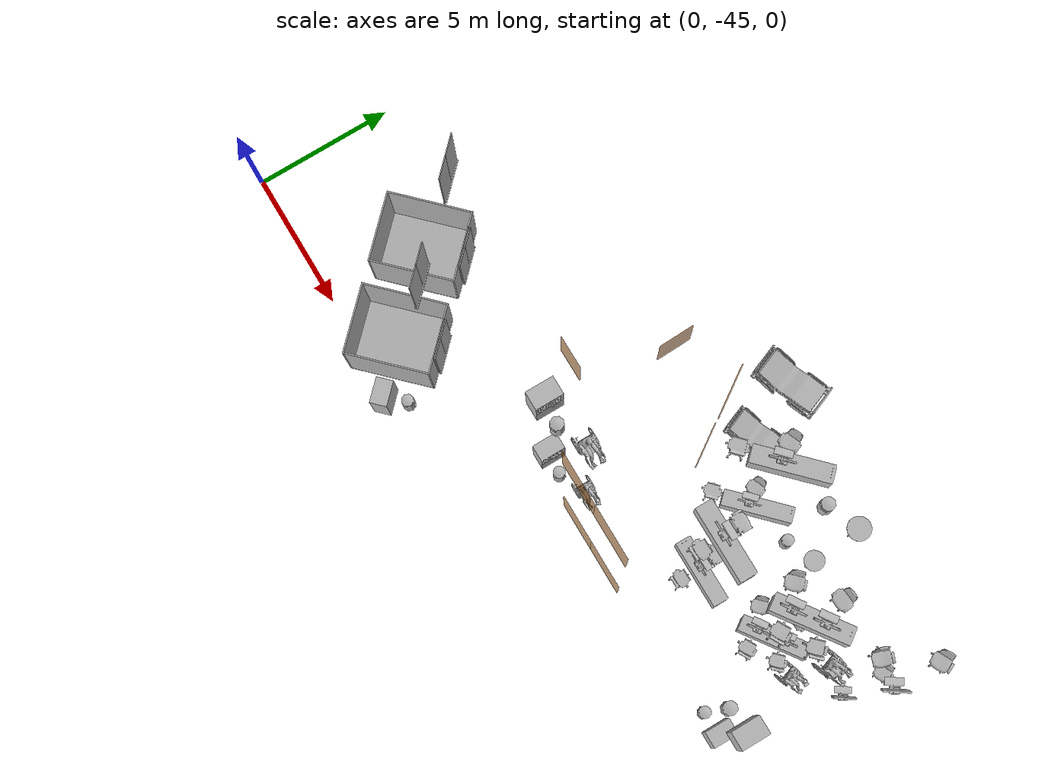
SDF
<sdf version="1.7">
 <world name="sim_world">
  <include>
   <name>OpenRobotics/CoffeeTable</name>
   <uri>model://CoffeeTable</uri>
   <pose>21.28316603207571 -35.513484096765545 0.0 0 0 1.5708</pose>
   <static>True</static>
  </include>
  <include>
   <name>OpenRobotics/CGMVanguard_17</name>
   <uri>model://CGMVanguard</uri>
   <pose>16.623283719856943 -34.967612784123716 0.0 0 0 0.3826</pose>
   <static>True</static>
  </include>
  <include>
   <name>OpenRobotics/NurseTable_3</name>
   <uri>model://NurseTable</uri>
   <pose>22.785792854121013 -38.1124841352256 0.0 0 0 -2.5278</pose>
   <static>True</static>
  </include>
  <include>
   <name>OpenRobotics/NurseTable_37</name>
   <uri>model://NurseTable</uri>
   <pose>18.77753163339873 -36.26738202376835 0.0 0 0 -2.37</pose>
   <static>True</static>
  </include>
  <include>
   <name>OpenRobotics/NurseTable_38</name>
   <uri>model://NurseTable</uri>
   <pose>19.64964424445215 -39.04807892004157 0.0 0 0 -3.1416</pose>
   <static>True</static>
  </include>
  <include>
   <name>OpenRobotics/DeskChair</name>
   <uri>model://DeskChair</uri>
   <pose>19.392188761970708 -38.37179723856778 0.0 0 0 1.5708</pose>
   <static>True</static>
  </include>
  <include>
   <name>OpenRobotics/DeskChair_2</name>
   <uri>model://DeskChair</uri>
   <pose>21.619503096034787 -37.88580054613288 0.0 0 0 -0.7706</pose>
   <static>True</static>
  </include>
  <include>
   <name>OpenRobotics/DeskChair_3</name>
   <uri>model://DeskChair</uri>
   <pose>22.753001807622805 -36.9909388100458 0.0 0 0 -1.489</pose>
   <static>True</static>
  </include>
  <include>
   <name>OpenRobotics/DeskChair_4</name>
   <uri>model://DeskChair</uri>
   <pose>24.676985500557695 -36.931279566170566 0.0 0 0 -0.3695</pose>
   <static>True</static>
  </include>
  <include>
   <name>OpenRobotics/DeskChair_5</name>
   <uri>model://DeskChair</uri>
   <pose>25.638963886004408 -35.5442290681128 0.0 0 0 -1.0979</pose>
   <static>True</static>
  </include>
  <include>
   <name>OpenRobotics/DeskChair_17</name>
   <uri>model://DeskChair</uri>
   <pose>18.158324679820023 -35.89117341640709 0.0 0 0 -1.1703</pose>
   <static>True</static>
  </include>
  <include>
   <name>OpenRobotics/OfficeChairGrey</name>
   <uri>model://OfficeChairGrey</uri>
   <pose>19.48318526210532 -39.605742086842845 0.0 0 0 -3.1182</pose>
   <static>True</static>
  </include>
  <include>
   <name>OpenRobotics/OfficeChairGrey_2</name>
   <uri>model://OfficeChairGrey</uri>
   <pose>22.566189761932254 -38.93406407445871 0.0 0 0 -2.6428</pose>
   <static>True</static>
  </include>
  <include>
   <name>OpenRobotics/OfficeChairGrey_3</name>
   <uri>model://OfficeChairGrey</uri>
   <pose>23.432433367947407 -38.318895427098994 0.0 0 0 -2.3511</pose>
   <static>True</static>
  </include>
  <include>
   <name>OpenRobotics/OfficeChairGrey_45</name>
   <uri>model://OfficeChairGrey</uri>
   <pose>17.42068766585902 -37.16361678396988 0.0 0 0 -2.375</pose>
   <static>True</static>
  </include>
  <include>
   <name>OpenRobotics/MonitorAndKeyboard_7</name>
   <uri>model://MonitorAndKeyboard</uri>
   <pose>25.62889504249839 -37.210676512441864 0.86 0 0 -0.5974</pose>
   <static>True</static>
  </include>
  <include>
   <name>OpenRobotics/MonitorAndKeyboard_9</name>
   <uri>model://MonitorAndKeyboard</uri>
   <pose>22.280896888581225 -38.45732856428602 0.86 0 0 -0.9838</pose>
   <static>True</static>
  </include>
  <include>
   <name>OpenRobotics/MonitorAndKeyboard_10</name>
   <uri>model://MonitorAndKeyboard</uri>
   <pose>23.102315295565575 -37.87460097688554 0.86 0 0 -0.9674</pose>
   <static>True</static>
  </include>
  <include>
   <name>OpenRobotics/MonitorAndKeyboard_11</name>
   <uri>model://MonitorAndKeyboard</uri>
   <pose>19.465524402907597 -39.02602976808588 0.86 0 0 -1.5708</pose>
   <static>True</static>
  </include>
  <include>
   <name>OpenRobotics/MonitorAndKeyboard_32</name>
   <uri>model://MonitorAndKeyboard</uri>
   <pose>18.53876004769049 -36.463401407638194 0.86 0 0 -0.8187</pose>
   <static>True</static>
  </include>
  <include>
   <name>OpenRobotics/VendingMachine_2</name>
   <uri>model://VendingMachine</uri>
   <pose>13.523210645744406 -41.31690704203688 0.0 0 0 1.5708</pose>
   <static>True</static>
  </include>
  <include>
   <name>OpenRobotics/VendingMachine_3</name>
   <uri>model://VendingMachine</uri>
   <pose>24.505680550748068 -41.31690704203688 0.0 0 0 1.5708</pose>
   <static>True</static>
  </include>
  <include>
   <name>OpenRobotics/LitterBin</name>
   <uri>model://LitterBin</uri>
   <pose>14.326725895157889 -41.3937156263221 0.0 0 0 1.5708</pose>
   <static>True</static>
  </include>
  <include>
   <name>OpenRobotics/LitterBin_2</name>
   <uri>model://LitterBin</uri>
   <pose>23.67632014153304 -41.3765124418292 0.0 0 0 1.5708</pose>
   <static>True</static>
  </include>
  <include>
   <name>OpenRobotics/LitterBin_9</name>
   <uri>model://LitterBin</uri>
   <pose>20.249844236760143 -35.99409638090845 0.0 0 0 1.5708</pose>
   <static>True</static>
  </include>
  <include>
   <name>OpenRobotics/PatientWheelChair</name>
   <uri>model://PatientWheelChair</uri>
   <pose>24.24628668128151 -38.23912541825318 0.0 0 0 1.9049</pose>
   <static>True</static>
  </include>
  <include>
   <name>OpenRobotics/PatientWheelChair_3</name>
   <uri>model://PatientWheelChair</uri>
   <pose>15.355524787508186 -40.911191877235524 0.0 0 0 1.5708</pose>
   <static>True</static>
  </include>
  <include>
   <name>OpenRobotics/VendingMachine_6</name>
   <uri>model://VendingMachine</uri>
   <pose>9.019233875620175 -45.16312449521176 0.0 0 0 -0.7854</pose>
   <static>True</static>
  </include>
  <include>
   <name>OpenRobotics/LitterBin_10</name>
   <uri>model://LitterBin</uri>
   <pose>9.557890081150735 -44.544321372254956 0.0 0 0 1.5708</pose>
   <static>True</static>
  </include>
  <model name="L1_clinic_a">
   <pose>17.010597669320425 -41.768955040190804 0.0 0 0 3.141592653589793</pose>
   <link name="left">
    <pose>-0.8791594554055622 0 1.11 0 0 0</pose>
    <visual name="left_visual">
     <geometry><box><size>1.7483189108111243 0.03 2.2</size></box></geometry>
     <material>
      <ambient>0.5 0.25 0 0.6</ambient>
      <diffuse>0.5 0.25 0 0.6</diffuse>
      <pbr><metal><metalness>0.0</metalness></metal></pbr>
     </material>
    </visual>
    <collision name="left_collision">
     <geometry><box><size>1.7483189108111243 0.03 2.2</size></box></geometry>
     <surface><contact><collide_bitmask>0x02</collide_bitmask></contact></surface>
    </collision>
    <inertial>
     <mass>50.0</mass>
     <inertia><ixx>20.17041666666667</ixx><iyy>32.90257922458249</iyy><izz>12.739662557915818</izz></inertia>
    </inertial>
   </link>
   <joint name="left_joint" type="prismatic">
    <parent>world</parent>
    <child>left</child>
    <axis>
     <xyz>1 0 0</xyz>
     <limit><lower>-1.7583189108111243</lower><upper>0.0</upper><effort>500.0</effort></limit>
    </axis>
   </joint>
   <link name="right">
    <pose>0.8791594554055622 0 1.11 0 0 0</pose>
    <visual name="right_visual">
     <geometry><box><size>1.7483189108111243 0.03 2.2</size></box></geometry>
     <material>
      <ambient>0.5 0.25 0 0.6</ambient>
      <diffuse>0.5 0.25 0 0.6</diffuse>
      <pbr><metal><metalness>0.0</metalness></metal></pbr>
     </material>
    </visual>
    <collision name="right_collision">
     <geometry><box><size>1.7483189108111243 0.03 2.2</size></box></geometry>
     <surface><contact><collide_bitmask>0x02</collide_bitmask></contact></surface>
    </collision>
    <inertial>
     <mass>50.0</mass>
     <inertia><ixx>20.17041666666667</ixx><iyy>32.90257922458249</iyy><izz>12.739662557915818</izz></inertia>
    </inertial>
   </link>
   <joint name="right_joint" type="prismatic">
    <parent>world</parent>
    <child>right</child>
    <axis>
     <xyz>1 0 0</xyz>
     <limit><lower>0.0</lower><upper>1.7583189108111243</upper><effort>500.0</effort></limit>
    </axis>
   </joint>
   <plugin name="door" filename="libdoor.so">
    <v_max_door>0.2</v_max_door>
    <a_max_door>0.2</a_max_door>
    <a_nom_door>0.08</a_nom_door>
    <dx_min_door>0.001</dx_min_door>
    <f_max_door>100.0</f_max_door>
    <door name="L1_clinic_a" type="DoubleSlidingDoor" left_joint_name="left_joint" right_joint_name="right_joint"/>
   </plugin>
  </model>
  <model name="L1_left_consult_rm_7_outer">
   <pose>16.104374831737253 -36.70911888004311 0.0 0 0 -0.9670545342019088</pose>
   <static>true</static>
   <link name="right">
    <pose>0 0 1.11 0 0 0</pose>
    <visual name="right_visual">
     <geometry><box><size>1.3074913466446625 0.03 2.2</size></box></geometry>
     <material>
      <ambient>0.5 0.25 0 0.6</ambient>
      <diffuse>0.5 0.25 0 0.6</diffuse>
      <pbr><metal><metalness>0.0</metalness></metal></pbr>
     </material>
    </visual>
    <collision name="right_collision">
     <geometry><box><size>1.3074913466446625 0.03 2.2</size></box></geometry>
     <surface><contact><collide_bitmask>0x02</collide_bitmask></contact></surface>
    </collision>
    <inertial>
     <mass>50.0</mass>
     <inertia><ixx>20.17041666666667</ixx><iyy>27.289723423127807</iyy><izz>7.1268067564611375</izz></inertia>
    </inertial>
   </link>
   <joint name="right_joint" type="prismatic">
    <parent>world</parent>
    <child>right</child>
    <axis>
     <xyz>1 0 0</xyz>
     <limit><lower>0.0</lower><upper>1.3174913466446625</upper><effort>500.0</effort></limit>
    </axis>
   </joint>
  </model>
  <model name="L1_wc_1">
   <pose>11.200928810430376 -39.07548555824779 0.0 0 0 0.003911519091325118</pose>
   <static>true</static>
   <link name="right">
    <pose>0 0 1.11 0 0 0</pose>
    <visual name="right_visual">
     <geometry><box><size>1.2426652499551487 0.03 2.2</size></box></geometry>
     <material>
      <ambient>0.5 0.25 0 0.6</ambient>
      <diffuse>0.5 0.25 0 0.6</diffuse>
      <pbr><metal><metalness>0.0</metalness></metal></pbr>
     </material>
    </visual>
    <collision name="right_collision">
     <geometry><box><size>1.2426652499551487 0.03 2.2</size></box></geometry>
     <surface><contact><collide_bitmask>0x02</collide_bitmask></contact></surface>
    </collision>
    <inertial>
     <mass>50.0</mass>
     <inertia><ixx>20.17041666666667</ixx><iyy>26.600903847692056</iyy><izz>6.437987181025385</izz></inertia>
    </inertial>
   </link>
   <joint name="right_joint" type="revolute">
    <parent>world</parent>
    <child>right</child>
    <axis><xyz>0 0 1</xyz><limit><lower>0</lower><upper>1.57</upper></limit></axis>
    <pose>0.6263326249775744 0 0 0 0 0</pose>
   </joint>
  </model>
  <model name="L1_hr">
   <pose>12.55797469328104 -35.737919695396364 0.0 0 0 -1.5363800665340395</pose>
   <static>true</static>
   <link name="left">
    <pose>0 0 1.11 0 0 0</pose>
    <visual name="left_visual">
     <geometry><box><size>1.3419909622330712 0.03 2.2</size></box></geometry>
     <material>
      <ambient>0.5 0.25 0 0.6</ambient>
      <diffuse>0.5 0.25 0 0.6</diffuse>
      <pbr><metal><metalness>0.0</metalness></metal></pbr>
     </material>
    </visual>
    <collision name="left_collision">
     <geometry><box><size>1.3419909622330712 0.03 2.2</size></box></geometry>
     <surface><contact><collide_bitmask>0x02</collide_bitmask></contact></surface>
    </collision>
    <inertial>
     <mass>50.0</mass>
     <inertia><ixx>20.17041666666667</ixx><iyy>27.670582261313523</iyy><izz>7.507665594646852</izz></inertia>
    </inertial>
   </link>
   <joint name="left_joint" type="revolute">
    <parent>world</parent>
    <child>left</child>
    <axis><xyz>0 0 1</xyz><limit><lower>-1.57</lower><upper>0</upper></limit></axis>
    <pose>0.6759954811165356 0 0 0 0 0</pose>
   </joint>
  </model>
  <include>
   <name>OpenRobotics/CoffeeTable_4</name>
   <uri>model://CoffeeTable</uri>
   <pose>21.28316603207571 -35.513484096765545 10.0 0 0 1.5708</pose>
   <static>True</static>
  </include>
  <include>
   <name>OpenRobotics/CGMVanguard_35</name>
   <uri>model://CGMVanguard</uri>
   <pose>16.623283719856943 -34.967612784123716 10.0 0 0 0.3826</pose>
   <static>True</static>
  </include>
  <include>
   <name>OpenRobotics/NurseTable_46</name>
   <uri>model://NurseTable</uri>
   <pose>22.785792854121013 -38.1124841352256 10.0 0 0 -2.5278</pose>
   <static>True</static>
  </include>
  <include>
   <name>OpenRobotics/NurseTable_74</name>
   <uri>model://NurseTable</uri>
   <pose>18.77753163339873 -36.26738202376835 10.0 0 0 -2.37</pose>
   <static>True</static>
  </include>
  <include>
   <name>OpenRobotics/NurseTable_75</name>
   <uri>model://NurseTable</uri>
   <pose>19.64964424445215 -39.04807892004157 10.0 0 0 -3.1416</pose>
   <static>True</static>
  </include>
  <include>
   <name>OpenRobotics/DeskChair_50</name>
   <uri>model://DeskChair</uri>
   <pose>19.392188761970708 -38.37179723856778 10.0 0 0 1.5708</pose>
   <static>True</static>
  </include>
  <include>
   <name>OpenRobotics/DeskChair_51</name>
   <uri>model://DeskChair</uri>
   <pose>21.619503096034787 -37.88580054613288 10.0 0 0 -0.7706</pose>
   <static>True</static>
  </include>
  <include>
   <name>OpenRobotics/DeskChair_52</name>
   <uri>model://DeskChair</uri>
   <pose>22.753001807622805 -36.9909388100458 10.0 0 0 -1.489</pose>
   <static>True</static>
  </include>
  <include>
   <name>OpenRobotics/DeskChair_53</name>
   <uri>model://DeskChair</uri>
   <pose>24.676985500557695 -36.931279566170566 10.0 0 0 -0.3695</pose>
   <static>True</static>
  </include>
  <include>
   <name>OpenRobotics/DeskChair_54</name>
   <uri>model://DeskChair</uri>
   <pose>25.638963886004408 -35.5442290681128 10.0 0 0 -1.0979</pose>
   <static>True</static>
  </include>
  <include>
   <name>OpenRobotics/DeskChair_57</name>
   <uri>model://DeskChair</uri>
   <pose>18.158324679820023 -35.89117341640709 10.0 0 0 -1.1703</pose>
   <static>True</static>
  </include>
  <include>
   <name>OpenRobotics/OfficeChairGrey_49</name>
   <uri>model://OfficeChairGrey</uri>
   <pose>19.48318526210532 -39.605742086842845 10.0 0 0 -3.1182</pose>
   <static>True</static>
  </include>
  <include>
   <name>OpenRobotics/OfficeChairGrey_50</name>
   <uri>model://OfficeChairGrey</uri>
   <pose>22.566189761932254 -38.93406407445871 10.0 0 0 -2.6428</pose>
   <static>True</static>
  </include>
  <include>
   <name>OpenRobotics/OfficeChairGrey_51</name>
   <uri>model://OfficeChairGrey</uri>
   <pose>23.432433367947407 -38.318895427098994 10.0 0 0 -2.3511</pose>
   <static>True</static>
  </include>
  <include>
   <name>OpenRobotics/OfficeChairGrey_81</name>
   <uri>model://OfficeChairGrey</uri>
   <pose>17.42068766585902 -37.16361678396988 10.0 0 0 -2.375</pose>
   <static>True</static>
  </include>
  <include>
   <name>OpenRobotics/MonitorAndKeyboard_58</name>
   <uri>model://MonitorAndKeyboard</uri>
   <pose>25.62889504249839 -37.210676512441864 10.86 0 0 -0.5974</pose>
   <static>True</static>
  </include>
  <include>
   <name>OpenRobotics/MonitorAndKeyboard_60</name>
   <uri>model://MonitorAndKeyboard</uri>
   <pose>22.280896888581225 -38.45732856428602 10.86 0 0 -0.9838</pose>
   <static>True</static>
  </include>
  <include>
   <name>OpenRobotics/MonitorAndKeyboard_61</name>
   <uri>model://MonitorAndKeyboard</uri>
   <pose>23.102315295565575 -37.87460097688554 10.86 0 0 -0.9674</pose>
   <static>True</static>
  </include>
  <include>
   <name>OpenRobotics/MonitorAndKeyboard_62</name>
   <uri>model://MonitorAndKeyboard</uri>
   <pose>19.465524402907597 -39.02602976808588 10.86 0 0 -1.5708</pose>
   <static>True</static>
  </include>
  <include>
   <name>OpenRobotics/MonitorAndKeyboard_75</name>
   <uri>model://MonitorAndKeyboard</uri>
   <pose>18.53876004769049 -36.463401407638194 10.86 0 0 -0.8187</pose>
   <static>True</static>
  </include>
  <include>
   <name>OpenRobotics/VendingMachine_8</name>
   <uri>model://VendingMachine</uri>
   <pose>13.523210645744406 -41.31690704203688 10.0 0 0 1.5708</pose>
   <static>True</static>
  </include>
  <include>
   <name>OpenRobotics/VendingMachine_9</name>
   <uri>model://VendingMachine</uri>
   <pose>24.505680550748068 -41.31690704203688 10.0 0 0 1.5708</pose>
   <static>True</static>
  </include>
  <include>
   <name>OpenRobotics/LitterBin_11</name>
   <uri>model://LitterBin</uri>
   <pose>14.326725895157889 -41.3937156263221 10.0 0 0 1.5708</pose>
   <static>True</static>
  </include>
  <include>
   <name>OpenRobotics/LitterBin_12</name>
   <uri>model://LitterBin</uri>
   <pose>23.67632014153304 -41.3765124418292 10.0 0 0 1.5708</pose>
   <static>True</static>
  </include>
  <include>
   <name>OpenRobotics/LitterBin_17</name>
   <uri>model://LitterBin</uri>
   <pose>20.249844236760143 -35.99409638090845 10.0 0 0 1.5708</pose>
   <static>True</static>
  </include>
  <include>
   <name>OpenRobotics/PatientWheelChair_9</name>
   <uri>model://PatientWheelChair</uri>
   <pose>24.24628668128151 -38.23912541825318 10.0 0 0 1.9049</pose>
   <static>True</static>
  </include>
  <include>
   <name>OpenRobotics/PatientWheelChair_10</name>
   <uri>model://PatientWheelChair</uri>
   <pose>15.355524787508186 -40.911191877235524 10.0 0 0 1.5708</pose>
   <static>True</static>
  </include>
  <model name="L2_clinic_a">
   <pose>17.010597669320425 -41.768955040190804 10.0 0 0 3.141592653589793</pose>
   <link name="left">
    <pose>-0.8791594554055622 0 1.11 0 0 0</pose>
    <visual name="left_visual">
     <geometry><box><size>1.7483189108111243 0.03 2.2</size></box></geometry>
     <material>
      <ambient>0.5 0.25 0 0.6</ambient>
      <diffuse>0.5 0.25 0 0.6</diffuse>
      <pbr><metal><metalness>0.0</metalness></metal></pbr>
     </material>
    </visual>
    <collision name="left_collision">
     <geometry><box><size>1.7483189108111243 0.03 2.2</size></box></geometry>
     <surface><contact><collide_bitmask>0x02</collide_bitmask></contact></surface>
    </collision>
    <inertial>
     <mass>50.0</mass>
     <inertia><ixx>20.17041666666667</ixx><iyy>32.90257922458249</iyy><izz>12.739662557915818</izz></inertia>
    </inertial>
   </link>
   <joint name="left_joint" type="prismatic">
    <parent>world</parent>
    <child>left</child>
    <axis>
     <xyz>1 0 0</xyz>
     <limit><lower>-1.7583189108111243</lower><upper>0.0</upper><effort>500.0</effort></limit>
    </axis>
   </joint>
   <link name="right">
    <pose>0.8791594554055622 0 1.11 0 0 0</pose>
    <visual name="right_visual">
     <geometry><box><size>1.7483189108111243 0.03 2.2</size></box></geometry>
     <material>
      <ambient>0.5 0.25 0 0.6</ambient>
      <diffuse>0.5 0.25 0 0.6</diffuse>
      <pbr><metal><metalness>0.0</metalness></metal></pbr>
     </material>
    </visual>
    <collision name="right_collision">
     <geometry><box><size>1.7483189108111243 0.03 2.2</size></box></geometry>
     <surface><contact><collide_bitmask>0x02</collide_bitmask></contact></surface>
    </collision>
    <inertial>
     <mass>50.0</mass>
     <inertia><ixx>20.17041666666667</ixx><iyy>32.90257922458249</iyy><izz>12.739662557915818</izz></inertia>
    </inertial>
   </link>
   <joint name="right_joint" type="prismatic">
    <parent>world</parent>
    <child>right</child>
    <axis>
     <xyz>1 0 0</xyz>
     <limit><lower>0.0</lower><upper>1.7583189108111243</upper><effort>500.0</effort></limit>
    </axis>
   </joint>
   <plugin name="door" filename="libdoor.so">
    <v_max_door>0.2</v_max_door>
    <a_max_door>0.2</a_max_door>
    <a_nom_door>0.08</a_nom_door>
    <dx_min_door>0.001</dx_min_door>
    <f_max_door>100.0</f_max_door>
    <door name="L2_clinic_a" type="DoubleSlidingDoor" left_joint_name="left_joint" right_joint_name="right_joint"/>
   </plugin>
  </model>
  <model name="L2_left_consult_rm_7_outer">
   <pose>16.104374831737253 -36.70911888004311 10.0 0 0 -0.9670545342019088</pose>
   <static>true</static>
   <link name="right">
    <pose>0 0 1.11 0 0 0</pose>
    <visual name="right_visual">
     <geometry><box><size>1.3074913466446625 0.03 2.2</size></box></geometry>
     <material>
      <ambient>0.5 0.25 0 0.6</ambient>
      <diffuse>0.5 0.25 0 0.6</diffuse>
      <pbr><metal><metalness>0.0</metalness></metal></pbr>
     </material>
    </visual>
    <collision name="right_collision">
     <geometry><box><size>1.3074913466446625 0.03 2.2</size></box></geometry>
     <surface><contact><collide_bitmask>0x02</collide_bitmask></contact></surface>
    </collision>
    <inertial>
     <mass>50.0</mass>
     <inertia><ixx>20.17041666666667</ixx><iyy>27.289723423127807</iyy><izz>7.1268067564611375</izz></inertia>
    </inertial>
   </link>
   <joint name="right_joint" type="prismatic">
    <parent>world</parent>
    <child>right</child>
    <axis>
     <xyz>1 0 0</xyz>
     <limit><lower>0.0</lower><upper>1.3174913466446625</upper><effort>500.0</effort></limit>
    </axis>
   </joint>
  </model>
  <model name="ShaftDoor_lift_24_L1_lift_24_door">
   <pose>6.318455073942428 -40.28272590672457 0.0 0 0 -0.785</pose>
   <link name="right_door">
    <pose>0.35 0 1.25 0 0 0</pose>
    <visual name="right_door_visual">
     <geometry><box><size>0.7 0.03 2.5</size></box></geometry>
     <material>
      <ambient>0.5 0.5 0.5 1</ambient>
      <diffuse>0.7 0.7 0.7 1</diffuse>
      <specular>0.6 0.6 0.6 1</specular>
      <emissive>0.1 0.1 0.1 1</emissive>
     </material>
    </visual>
    <collision name="right_door_collision">
     <geometry><box><size>0.7 0.03 2.5</size></box></geometry>
     <surface><contact><collide_bitmask>0x02</collide_bitmask></contact></surface>
    </collision>
   </link>
   <joint name="right_joint" type="prismatic">
    <parent>world</parent>
    <child>right_door</child>
    <axis><xyz>1 0 0</xyz><limit><lower>0</lower><upper>0.7</upper></limit></axis>
   </joint>
   <link name="left_door">
    <pose>-0.35 0 1.25 0 0 0</pose>
    <visual name="left_door_visual">
     <geometry><box><size>0.7 0.03 2.5</size></box></geometry>
     <material>
      <ambient>0.5 0.5 0.5 1</ambient>
      <diffuse>0.7 0.7 0.7 1</diffuse>
      <specular>0.6 0.6 0.6 1</specular>
      <emissive>0.1 0.1 0.1 1</emissive>
     </material>
    </visual>
    <collision name="left_door_collision">
     <geometry><box><size>0.7 0.03 2.5</size></box></geometry>
     <surface><contact><collide_bitmask>0x02</collide_bitmask></contact></surface>
    </collision>
   </link>
   <joint name="left_joint" type="prismatic">
    <parent>world</parent>
    <child>left_door</child>
    <axis><xyz>1 0 0</xyz><limit><lower>-0.7</lower><upper>0</upper></limit></axis>
   </joint>
   <link name="ramp">
    <pose>0 0 -0.025 0 0 0</pose>
    <visual name="ramp_visual">
     <geometry><box><size>1.4 0.1 0.05</size></box></geometry>
     <material>
      <ambient>0.5 0.5 0.5 1</ambient>
      <diffuse>0.7 0.7 0.7 1</diffuse>
      <specular>0.6 0.6 0.6 1</specular>
      <emissive>0.1 0.1 0.1 1</emissive>
     </material>
    </visual>
    <collision name="ramp_collision">
     <geometry><box><size>1.4 0.1 0.05</size></box></geometry>
     <surface><contact><collide_bitmask>0x02</collide_bitmask></contact></surface>
    </collision>
   </link>
   <joint name="ramp_joint" type="fixed"><parent>world</parent><child>ramp</child></joint>
  </model>
  <model name="ShaftDoor_lift_24_L2_lift_24_door">
   <pose>6.318455073942428 -40.28272590672457 10.0 0 0 -0.785</pose>
   <link name="right_door">
    <pose>0.35 0 1.25 0 0 0</pose>
    <visual name="right_door_visual">
     <geometry><box><size>0.7 0.03 2.5</size></box></geometry>
     <material>
      <ambient>0.5 0.5 0.5 1</ambient>
      <diffuse>0.7 0.7 0.7 1</diffuse>
      <specular>0.6 0.6 0.6 1</specular>
      <emissive>0.1 0.1 0.1 1</emissive>
     </material>
    </visual>
    <collision name="right_door_collision">
     <geometry><box><size>0.7 0.03 2.5</size></box></geometry>
     <surface><contact><collide_bitmask>0x02</collide_bitmask></contact></surface>
    </collision>
   </link>
   <joint name="right_joint" type="prismatic">
    <parent>world</parent>
    <child>right_door</child>
    <axis><xyz>1 0 0</xyz><limit><lower>0</lower><upper>0.7</upper></limit></axis>
   </joint>
   <link name="left_door">
    <pose>-0.35 0 1.25 0 0 0</pose>
    <visual name="left_door_visual">
     <geometry><box><size>0.7 0.03 2.5</size></box></geometry>
     <material>
      <ambient>0.5 0.5 0.5 1</ambient>
      <diffuse>0.7 0.7 0.7 1</diffuse>
      <specular>0.6 0.6 0.6 1</specular>
      <emissive>0.1 0.1 0.1 1</emissive>
     </material>
    </visual>
    <collision name="left_door_collision">
     <geometry><box><size>0.7 0.03 2.5</size></box></geometry>
     <surface><contact><collide_bitmask>0x02</collide_bitmask></contact></surface>
    </collision>
   </link>
   <joint name="left_joint" type="prismatic">
    <parent>world</parent>
    <child>left_door</child>
    <axis><xyz>1 0 0</xyz><limit><lower>-0.7</lower><upper>0</upper></limit></axis>
   </joint>
   <link name="ramp">
    <pose>0 0 -0.025 0 0 0</pose>
    <visual name="ramp_visual">
     <geometry><box><size>1.4 0.1 0.05</size></box></geometry>
     <material>
      <ambient>0.5 0.5 0.5 1</ambient>
      <diffuse>0.7 0.7 0.7 1</diffuse>
      <specular>0.6 0.6 0.6 1</specular>
      <emissive>0.1 0.1 0.1 1</emissive>
     </material>
    </visual>
    <collision name="ramp_collision">
     <geometry><box><size>1.4 0.1 0.05</size></box></geometry>
     <surface><contact><collide_bitmask>0x02</collide_bitmask></contact></surface>
    </collision>
   </link>
   <joint name="ramp_joint" type="fixed"><parent>world</parent><child>ramp</child></joint>
  </model>
  <model name="lift_24">
   <link name="platform">
    <inertial><mass>1200</mass><inertia><ixx>625.25</ixx><iyy>900.25</iyy><izz>1525.0</izz></inertia></inertial>
    <visual name="floor">
     <pose>0 0 -0.025 0 0 0</pose>
     <geometry><box><size>2.5 3.0 0.05</size></box></geometry>
     <material>
      <ambient>0.5 0.5 0.5 1</ambient>
      <diffuse>0.7 0.7 0.7 1</diffuse>
      <specular>0.6 0.6 0.6 1</specular>
      <emissive>0.1 0.1 0.1 1</emissive>
     </material>
    </visual>
    <collision name="floor">
     <pose>0 0 -0.025 0 0 0</pose>
     <geometry><box><size>2.5 3.0 0.05</size></box></geometry>
     <surface><contact><collide_bitmask>0x01</collide_bitmask></contact></surface>
    </collision>
    <visual name="frontwall1">
     <pose>-0.975 1.475 1.25 0 0 0</pose>
     <geometry><box><size>0.55 0.05 2.5</size></box></geometry>
     <material>
      <ambient>0.5 0.5 0.5 1</ambient>
      <diffuse>0.7 0.7 0.7 1</diffuse>
      <specular>0.6 0.6 0.6 1</specular>
      <emissive>0.1 0.1 0.1 1</emissive>
     </material>
    </visual>
    <collision name="frontwall1">
     <pose>-0.975 1.475 1.25 0 0 0</pose>
     <geometry><box><size>0.55 0.05 2.5</size></box></geometry>
     <surface><contact><collide_bitmask>0x01</collide_bitmask></contact></surface>
    </collision>
    <visual name="frontwall2">
     <pose>0.975 1.475 1.25 0 0 0</pose>
     <geometry><box><size>0.55 0.05 2.5</size></box></geometry>
     <material>
      <ambient>0.5 0.5 0.5 1</ambient>
      <diffuse>0.7 0.7 0.7 1</diffuse>
      <specular>0.6 0.6 0.6 1</specular>
      <emissive>0.1 0.1 0.1 1</emissive>
     </material>
    </visual>
    <collision name="frontwall2">
     <pose>0.975 1.475 1.25 0 0 0</pose>
     <geometry><box><size>0.55 0.05 2.5</size></box></geometry>
     <surface><contact><collide_bitmask>0x01</collide_bitmask></contact></surface>
    </collision>
    <visual name="backwall1">
     <pose>0.0 -1.475 1.25 0 0 0</pose>
     <geometry><box><size>2.5 0.05 2.5</size></box></geometry>
     <material>
      <ambient>0.5 0.5 0.5 1</ambient>
      <diffuse>0.7 0.7 0.7 1</diffuse>
      <specular>0.6 0.6 0.6 1</specular>
      <emissive>0.1 0.1 0.1 1</emissive>
     </material>
    </visual>
    <collision name="backwall1">
     <pose>0.0 -1.475 1.25 0 0 0</pose>
     <geometry><box><size>2.5 0.05 2.5</size></box></geometry>
     <surface><contact><collide_bitmask>0x01</collide_bitmask></contact></surface>
    </collision>
    <visual name="leftwall1">
     <pose>-1.225 0.0 1.25 0 0 1.5707963267948966</pose>
     <geometry><box><size>2.9 0.05 2.5</size></box></geometry>
     <material>
      <ambient>0.5 0.5 0.5 1</ambient>
      <diffuse>0.7 0.7 0.7 1</diffuse>
      <specular>0.6 0.6 0.6 1</specular>
      <emissive>0.1 0.1 0.1 1</emissive>
     </material>
    </visual>
    <collision name="leftwall1">
     <pose>-1.225 0.0 1.25 0 0 1.5707963267948966</pose>
     <geometry><box><size>2.9 0.05 2.5</size></box></geometry>
     <surface><contact><collide_bitmask>0x01</collide_bitmask></contact></surface>
    </collision>
    <visual name="rightwall1">
     <pose>1.225 0.0 1.25 0 0 1.5707963267948966</pose>
     <geometry><box><size>2.9 0.05 2.5</size></box></geometry>
     <material>
      <ambient>0.5 0.5 0.5 1</ambient>
      <diffuse>0.7 0.7 0.7 1</diffuse>
      <specular>0.6 0.6 0.6 1</specular>
      <emissive>0.1 0.1 0.1 1</emissive>
     </material>
    </visual>
    <collision name="rightwall1">
     <pose>1.225 0.0 1.25 0 0 1.5707963267948966</pose>
     <geometry><box><size>2.9 0.05 2.5</size></box></geometry>
     <surface><contact><collide_bitmask>0x01</collide_bitmask></contact></surface>
    </collision>
   </link>
   <joint name="cabin_joint" type="prismatic">
    <parent>world</parent>
    <child>platform</child>
    <axis><xyz>0 0 1</xyz></axis>
   </joint>
   <link name="CabinDoor_lift_24_lift_24_door_right_door">
    <pose>0.35 1.475 1.25 0 0 0.0</pose>
    <visual name="CabinDoor_lift_24_lift_24_door_right_door_visual">
     <geometry><box><size>0.7 0.03 2.5</size></box></geometry>
     <material>
      <ambient>0.5 0.5 0.5 1</ambient>
      <diffuse>0.7 0.7 0.7 1</diffuse>
      <specular>0.6 0.6 0.6 1</specular>
      <emissive>0.1 0.1 0.1 1</emissive>
     </material>
    </visual>
    <collision name="CabinDoor_lift_24_lift_24_door_right_door_collision">
     <geometry><box><size>0.7 0.03 2.5</size></box></geometry>
     <surface><contact><collide_bitmask>0x02</collide_bitmask></contact></surface>
    </collision>
   </link>
   <joint name="CabinDoor_lift_24_lift_24_door_right_joint" type="prismatic">
    <parent>platform</parent>
    <child>CabinDoor_lift_24_lift_24_door_right_door</child>
    <axis><xyz>1 0 0</xyz><limit><lower>0</lower><upper>0.7</upper></limit></axis>
   </joint>
   <link name="CabinDoor_lift_24_lift_24_door_left_door">
    <pose>-0.35 1.475 1.25 0 0 0.0</pose>
    <visual name="CabinDoor_lift_24_lift_24_door_left_door_visual">
     <geometry><box><size>0.7 0.03 2.5</size></box></geometry>
     <material>
      <ambient>0.5 0.5 0.5 1</ambient>
      <diffuse>0.7 0.7 0.7 1</diffuse>
      <specular>0.6 0.6 0.6 1</specular>
      <emissive>0.1 0.1 0.1 1</emissive>
     </material>
    </visual>
    <collision name="CabinDoor_lift_24_lift_24_door_left_door_collision">
     <geometry><box><size>0.7 0.03 2.5</size></box></geometry>
     <surface><contact><collide_bitmask>0x02</collide_bitmask></contact></surface>
    </collision>
   </link>
   <joint name="CabinDoor_lift_24_lift_24_door_left_joint" type="prismatic">
    <parent>platform</parent>
    <child>CabinDoor_lift_24_lift_24_door_left_door</child>
    <axis><xyz>1 0 0</xyz><limit><lower>-0.7</lower><upper>0</upper></limit></axis>
   </joint>
   <static>true</static>
   <pose>5.222876043229111 -41.37917772393373 0 0 0 -0.785</pose>
  </model>
  <model name="ShaftDoor_lift_25_L1_lift_25_door">
   <pose>8.633750639497602 -42.59802147227975 0.0 0 0 -0.785</pose>
   <link name="right_door">
    <pose>0.35 0 1.25 0 0 0</pose>
    <visual name="right_door_visual">
     <geometry><box><size>0.7 0.03 2.5</size></box></geometry>
     <material>
      <ambient>0.5 0.5 0.5 1</ambient>
      <diffuse>0.7 0.7 0.7 1</diffuse>
      <specular>0.6 0.6 0.6 1</specular>
      <emissive>0.1 0.1 0.1 1</emissive>
     </material>
    </visual>
    <collision name="right_door_collision">
     <geometry><box><size>0.7 0.03 2.5</size></box></geometry>
     <surface><contact><collide_bitmask>0x02</collide_bitmask></contact></surface>
    </collision>
   </link>
   <joint name="right_joint" type="prismatic">
    <parent>world</parent>
    <child>right_door</child>
    <axis><xyz>1 0 0</xyz><limit><lower>0</lower><upper>0.7</upper></limit></axis>
   </joint>
   <link name="left_door">
    <pose>-0.35 0 1.25 0 0 0</pose>
    <visual name="left_door_visual">
     <geometry><box><size>0.7 0.03 2.5</size></box></geometry>
     <material>
      <ambient>0.5 0.5 0.5 1</ambient>
      <diffuse>0.7 0.7 0.7 1</diffuse>
      <specular>0.6 0.6 0.6 1</specular>
      <emissive>0.1 0.1 0.1 1</emissive>
     </material>
    </visual>
    <collision name="left_door_collision">
     <geometry><box><size>0.7 0.03 2.5</size></box></geometry>
     <surface><contact><collide_bitmask>0x02</collide_bitmask></contact></surface>
    </collision>
   </link>
   <joint name="left_joint" type="prismatic">
    <parent>world</parent>
    <child>left_door</child>
    <axis><xyz>1 0 0</xyz><limit><lower>-0.7</lower><upper>0</upper></limit></axis>
   </joint>
   <link name="ramp">
    <pose>0 0 -0.025 0 0 0</pose>
    <visual name="ramp_visual">
     <geometry><box><size>1.4 0.1 0.05</size></box></geometry>
     <material>
      <ambient>0.5 0.5 0.5 1</ambient>
      <diffuse>0.7 0.7 0.7 1</diffuse>
      <specular>0.6 0.6 0.6 1</specular>
      <emissive>0.1 0.1 0.1 1</emissive>
     </material>
    </visual>
    <collision name="ramp_collision">
     <geometry><box><size>1.4 0.1 0.05</size></box></geometry>
     <surface><contact><collide_bitmask>0x02</collide_bitmask></contact></surface>
    </collision>
   </link>
   <joint name="ramp_joint" type="fixed"><parent>world</parent><child>ramp</child></joint>
   <plugin name="door" filename="libdoor.so">
    <v_max_door>0.3</v_max_door>
    <a_max_door>0.2</a_max_door>
    <a_nom_door>0.1</a_nom_door>
    <dx_min_door>0.0001</dx_min_door>
    <f_max_door>35.0</f_max_door>
    <door left_joint_name="left_joint" name="ShaftDoor_lift_25_L1_lift_25_door" right_joint_name="right_joint" type="DoubleSlidingDoor"/>
   </plugin>
  </model>
  <model name="ShaftDoor_lift_25_L2_lift_25_door">
   <pose>8.633750639497602 -42.59802147227975 10.0 0 0 -0.785</pose>
   <link name="right_door">
    <pose>0.35 0 1.25 0 0 0</pose>
    <visual name="right_door_visual">
     <geometry><box><size>0.7 0.03 2.5</size></box></geometry>
     <material>
      <ambient>0.5 0.5 0.5 1</ambient>
      <diffuse>0.7 0.7 0.7 1</diffuse>
      <specular>0.6 0.6 0.6 1</specular>
      <emissive>0.1 0.1 0.1 1</emissive>
     </material>
    </visual>
    <collision name="right_door_collision">
     <geometry><box><size>0.7 0.03 2.5</size></box></geometry>
     <surface><contact><collide_bitmask>0x02</collide_bitmask></contact></surface>
    </collision>
   </link>
   <joint name="right_joint" type="prismatic">
    <parent>world</parent>
    <child>right_door</child>
    <axis><xyz>1 0 0</xyz><limit><lower>0</lower><upper>0.7</upper></limit></axis>
   </joint>
   <link name="left_door">
    <pose>-0.35 0 1.25 0 0 0</pose>
    <visual name="left_door_visual">
     <geometry><box><size>0.7 0.03 2.5</size></box></geometry>
     <material>
      <ambient>0.5 0.5 0.5 1</ambient>
      <diffuse>0.7 0.7 0.7 1</diffuse>
      <specular>0.6 0.6 0.6 1</specular>
      <emissive>0.1 0.1 0.1 1</emissive>
     </material>
    </visual>
    <collision name="left_door_collision">
     <geometry><box><size>0.7 0.03 2.5</size></box></geometry>
     <surface><contact><collide_bitmask>0x02</collide_bitmask></contact></surface>
    </collision>
   </link>
   <joint name="left_joint" type="prismatic">
    <parent>world</parent>
    <child>left_door</child>
    <axis><xyz>1 0 0</xyz><limit><lower>-0.7</lower><upper>0</upper></limit></axis>
   </joint>
   <link name="ramp">
    <pose>0 0 -0.025 0 0 0</pose>
    <visual name="ramp_visual">
     <geometry><box><size>1.4 0.1 0.05</size></box></geometry>
     <material>
      <ambient>0.5 0.5 0.5 1</ambient>
      <diffuse>0.7 0.7 0.7 1</diffuse>
      <specular>0.6 0.6 0.6 1</specular>
      <emissive>0.1 0.1 0.1 1</emissive>
     </material>
    </visual>
    <collision name="ramp_collision">
     <geometry><box><size>1.4 0.1 0.05</size></box></geometry>
     <surface><contact><collide_bitmask>0x02</collide_bitmask></contact></surface>
    </collision>
   </link>
   <joint name="ramp_joint" type="fixed"><parent>world</parent><child>ramp</child></joint>
   <plugin name="door" filename="libdoor.so">
    <v_max_door>0.3</v_max_door>
    <a_max_door>0.2</a_max_door>
    <a_nom_door>0.1</a_nom_door>
    <dx_min_door>0.0001</dx_min_door>
    <f_max_door>35.0</f_max_door>
    <door left_joint_name="left_joint" name="ShaftDoor_lift_25_L2_lift_25_door" right_joint_name="right_joint" type="DoubleSlidingDoor"/>
   </plugin>
  </model>
  <model name="lift_25">
   <link name="platform">
    <inertial><mass>1200</mass><inertia><ixx>625.25</ixx><iyy>900.25</iyy><izz>1525.0</izz></inertia></inertial>
    <visual name="floor">
     <pose>0 0 -0.025 0 0 0</pose>
     <geometry><box><size>2.5 3.0 0.05</size></box></geometry>
     <material>
      <ambient>0.5 0.5 0.5 1</ambient>
      <diffuse>0.7 0.7 0.7 1</diffuse>
      <specular>0.6 0.6 0.6 1</specular>
      <emissive>0.1 0.1 0.1 1</emissive>
     </material>
    </visual>
    <collision name="floor">
     <pose>0 0 -0.025 0 0 0</pose>
     <geometry><box><size>2.5 3.0 0.05</size></box></geometry>
     <surface><contact><collide_bitmask>0x01</collide_bitmask></contact></surface>
    </collision>
    <visual name="frontwall1">
     <pose>-0.975 1.475 1.25 0 0 0</pose>
     <geometry><box><size>0.55 0.05 2.5</size></box></geometry>
     <material>
      <ambient>0.5 0.5 0.5 1</ambient>
      <diffuse>0.7 0.7 0.7 1</diffuse>
      <specular>0.6 0.6 0.6 1</specular>
      <emissive>0.1 0.1 0.1 1</emissive>
     </material>
    </visual>
    <collision name="frontwall1">
     <pose>-0.975 1.475 1.25 0 0 0</pose>
     <geometry><box><size>0.55 0.05 2.5</size></box></geometry>
     <surface><contact><collide_bitmask>0x01</collide_bitmask></contact></surface>
    </collision>
    <visual name="frontwall2">
     <pose>0.975 1.475 1.25 0 0 0</pose>
     <geometry><box><size>0.55 0.05 2.5</size></box></geometry>
     <material>
      <ambient>0.5 0.5 0.5 1</ambient>
      <diffuse>0.7 0.7 0.7 1</diffuse>
      <specular>0.6 0.6 0.6 1</specular>
      <emissive>0.1 0.1 0.1 1</emissive>
     </material>
    </visual>
    <collision name="frontwall2">
     <pose>0.975 1.475 1.25 0 0 0</pose>
     <geometry><box><size>0.55 0.05 2.5</size></box></geometry>
     <surface><contact><collide_bitmask>0x01</collide_bitmask></contact></surface>
    </collision>
    <visual name="backwall1">
     <pose>0.0 -1.475 1.25 0 0 0</pose>
     <geometry><box><size>2.5 0.05 2.5</size></box></geometry>
     <material>
      <ambient>0.5 0.5 0.5 1</ambient>
      <diffuse>0.7 0.7 0.7 1</diffuse>
      <specular>0.6 0.6 0.6 1</specular>
      <emissive>0.1 0.1 0.1 1</emissive>
     </material>
    </visual>
    <collision name="backwall1">
     <pose>0.0 -1.475 1.25 0 0 0</pose>
     <geometry><box><size>2.5 0.05 2.5</size></box></geometry>
     <surface><contact><collide_bitmask>0x01</collide_bitmask></contact></surface>
    </collision>
    <visual name="leftwall1">
     <pose>-1.225 0.0 1.25 0 0 1.5707963267948966</pose>
     <geometry><box><size>2.9 0.05 2.5</size></box></geometry>
     <material>
      <ambient>0.5 0.5 0.5 1</ambient>
      <diffuse>0.7 0.7 0.7 1</diffuse>
      <specular>0.6 0.6 0.6 1</specular>
      <emissive>0.1 0.1 0.1 1</emissive>
     </material>
    </visual>
    <collision name="leftwall1">
     <pose>-1.225 0.0 1.25 0 0 1.5707963267948966</pose>
     <geometry><box><size>2.9 0.05 2.5</size></box></geometry>
     <surface><contact><collide_bitmask>0x01</collide_bitmask></contact></surface>
    </collision>
    <visual name="rightwall1">
     <pose>1.225 0.0 1.25 0 0 1.5707963267948966</pose>
     <geometry><box><size>2.9 0.05 2.5</size></box></geometry>
     <material>
      <ambient>0.5 0.5 0.5 1</ambient>
      <diffuse>0.7 0.7 0.7 1</diffuse>
      <specular>0.6 0.6 0.6 1</specular>
      <emissive>0.1 0.1 0.1 1</emissive>
     </material>
    </visual>
    <collision name="rightwall1">
     <pose>1.225 0.0 1.25 0 0 1.5707963267948966</pose>
     <geometry><box><size>2.9 0.05 2.5</size></box></geometry>
     <surface><contact><collide_bitmask>0x01</collide_bitmask></contact></surface>
    </collision>
   </link>
   <joint name="cabin_joint" type="prismatic">
    <parent>world</parent>
    <child>platform</child>
    <axis><xyz>0 0 1</xyz></axis>
   </joint>
   <link name="CabinDoor_lift_25_lift_25_door_right_door">
    <pose>0.35 1.475 1.25 0 0 0.0</pose>
    <visual name="CabinDoor_lift_25_lift_25_door_right_door_visual">
     <geometry><box><size>0.7 0.03 2.5</size></box></geometry>
     <material>
      <ambient>0.5 0.5 0.5 1</ambient>
      <diffuse>0.7 0.7 0.7 1</diffuse>
      <specular>0.6 0.6 0.6 1</specular>
      <emissive>0.1 0.1 0.1 1</emissive>
     </material>
    </visual>
    <collision name="CabinDoor_lift_25_lift_25_door_right_door_collision">
     <geometry><box><size>0.7 0.03 2.5</size></box></geometry>
     <surface><contact><collide_bitmask>0x02</collide_bitmask></contact></surface>
    </collision>
   </link>
   <joint name="CabinDoor_lift_25_lift_25_door_right_joint" type="prismatic">
    <parent>platform</parent>
    <child>CabinDoor_lift_25_lift_25_door_right_door</child>
    <axis><xyz>1 0 0</xyz><limit><lower>0</lower><upper>0.7</upper></limit></axis>
   </joint>
   <link name="CabinDoor_lift_25_lift_25_door_left_door">
    <pose>-0.35 1.475 1.25 0 0 0.0</pose>
    <visual name="CabinDoor_lift_25_lift_25_door_left_door_visual">
     <geometry><box><size>0.7 0.03 2.5</size></box></geometry>
     <material>
      <ambient>0.5 0.5 0.5 1</ambient>
      <diffuse>0.7 0.7 0.7 1</diffuse>
      <specular>0.6 0.6 0.6 1</specular>
      <emissive>0.1 0.1 0.1 1</emissive>
     </material>
    </visual>
    <collision name="CabinDoor_lift_25_lift_25_door_left_door_collision">
     <geometry><box><size>0.7 0.03 2.5</size></box></geometry>
     <surface><contact><collide_bitmask>0x02</collide_bitmask></contact></surface>
    </collision>
   </link>
   <joint name="CabinDoor_lift_25_lift_25_door_left_joint" type="prismatic">
    <parent>platform</parent>
    <child>CabinDoor_lift_25_lift_25_door_left_door</child>
    <axis><xyz>1 0 0</xyz><limit><lower>-0.7</lower><upper>0</upper></limit></axis>
   </joint>
   <plugin name="door" filename="libdoor.so">
    <v_max_door>0.3</v_max_door>
    <a_max_door>0.2</a_max_door>
    <a_nom_door>0.1</a_nom_door>
    <dx_min_door>0.0001</dx_min_door>
    <f_max_door>35.0</f_max_door>
    <door left_joint_name="CabinDoor_lift_25_lift_25_door_left_joint" name="CabinDoor_lift_25_lift_25_door" right_joint_name="CabinDoor_lift_25_lift_25_door_right_joint" type="DoubleSlidingDoor"/>
   </plugin>
   <plugin name="lift" filename="liblift.so">
    <lift_name>lift_25</lift_name>
    <floor name="L1" elevation="0.0">
     <door_pair cabin_door="CabinDoor_lift_25_lift_25_door" shaft_door="ShaftDoor_lift_25_L1_lift_25_door"/>
    </floor>
    <floor name="L2" elevation="10.0">
     <door_pair cabin_door="CabinDoor_lift_25_lift_25_door" shaft_door="ShaftDoor_lift_25_L2_lift_25_door"/>
    </floor>
    <initial_floor>L1</initial_floor>
    <v_max_cabin>2.0</v_max_cabin>
    <a_max_cabin>1.2</a_max_cabin>
    <a_nom_cabin>1.0</a_nom_cabin>
    <dx_min_cabin>0.001</dx_min_cabin>
    <f_max_cabin>25323.0</f_max_cabin>
    <cabin_joint_name>cabin_joint</cabin_joint_name>
   </plugin>
   <pose>7.5381716087842845 -43.694473289488904 0 0 0 -0.785</pose>
  </model>
 </world>
</sdf>
